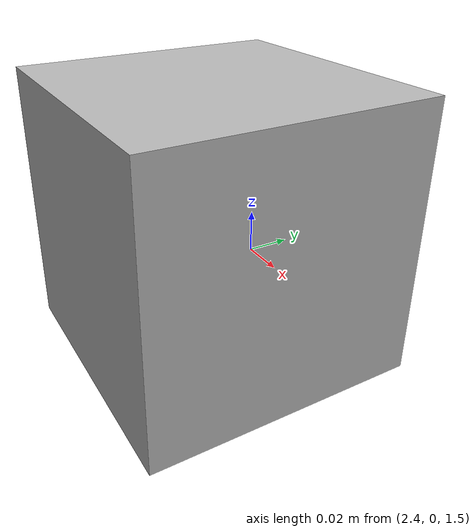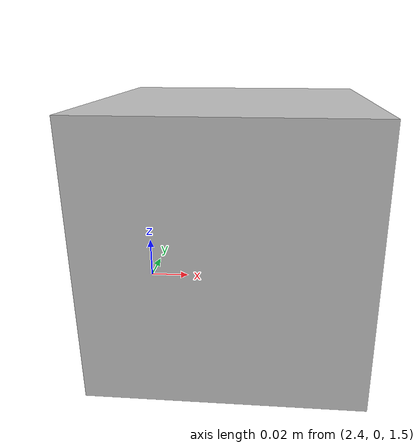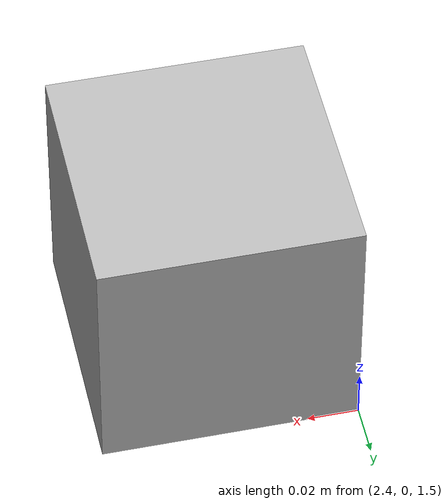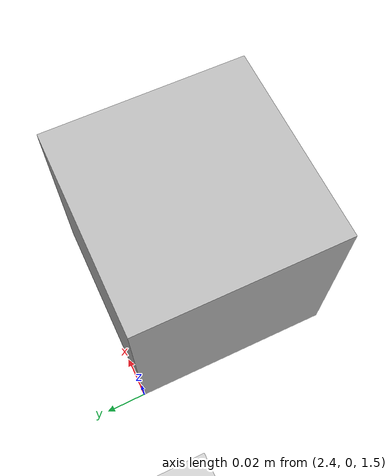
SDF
<?xml version="1.0" ?>
<sdf version="1.7">
  <world name="default">
    <plugin
      filename="gz-sim-sensors-system"
      name="gz::sim::systems::Sensors">
      <render_engine>ogre2</render_engine>
    </plugin>
    <plugin filename="RenderingServerPlugin"
            name="RenderingServerPlugin">
    </plugin>
    <plugin
      filename="gz-sim-scene-broadcaster-system"
      name="gz::sim::systems::SceneBroadcaster">
    </plugin>

    <gui fullscreen="0">

      <!-- 3D scene -->
      <plugin filename="MinimalScene" name="3D View">
        <gz-gui>
          <title>3D View</title>
          <property type="bool" key="showTitleBar">false</property>
          <property type="string" key="state">docked</property>
        </gz-gui>

        <engine>ogre2</engine>
        <scene>scene</scene>
        <ambient_light>0.4 0.4 0.4</ambient_light>
        <background_color>0.8 0.8 0.8</background_color>
        <camera_pose>-6 0 6 0 0.5 0</camera_pose>
      </plugin>

      <!-- Plugins that add functionality to the scene -->
      <plugin filename="EntityContextMenuPlugin" name="Entity context menu">
        <gz-gui>
          <property key="state" type="string">floating</property>
          <property key="width" type="double">5</property>
          <property key="height" type="double">5</property>
          <property key="showTitleBar" type="bool">false</property>
        </gz-gui>
      </plugin>
      <plugin filename="GzSceneManager" name="Scene Manager">
        <gz-gui>
          <property key="resizable" type="bool">false</property>
          <property key="width" type="double">5</property>
          <property key="height" type="double">5</property>
          <property key="state" type="string">floating</property>
          <property key="showTitleBar" type="bool">false</property>
        </gz-gui>
      </plugin>
      <plugin filename="InteractiveViewControl" name="Interactive view control">
        <gz-gui>
          <property key="resizable" type="bool">false</property>
          <property key="width" type="double">5</property>
          <property key="height" type="double">5</property>
          <property key="state" type="string">floating</property>
          <property key="showTitleBar" type="bool">false</property>
        </gz-gui>
      </plugin>
      <plugin filename="SelectEntities" name="Select Entities">
        <gz-gui>
          <anchors target="Select entities">
            <line own="right" target="right"/>
            <line own="top" target="top"/>
          </anchors>
          <property key="resizable" type="bool">false</property>
          <property key="width" type="double">5</property>
          <property key="height" type="double">5</property>
          <property key="state" type="string">floating</property>
          <property key="showTitleBar" type="bool">false</property>
        </gz-gui>
      </plugin>

      <!-- World control -->
      <plugin filename="WorldControl" name="World control">
        <gz-gui>
          <title>World control</title>
          <property type="bool" key="showTitleBar">false</property>
          <property type="bool" key="resizable">false</property>
          <property type="double" key="height">72</property>
          <property type="double" key="z">1</property>

          <property type="string" key="state">floating</property>
          <anchors target="3D View">
            <line own="left" target="left"/>
            <line own="bottom" target="bottom"/>
          </anchors>
        </gz-gui>

        <play_pause>true</play_pause>
        <step>true</step>
        <start_paused>true</start_paused>
        <use_event>true</use_event>

      </plugin>

      <!-- World statistics -->
      <plugin filename="WorldStats" name="World stats">
        <gz-gui>
          <title>World stats</title>
          <property type="bool" key="showTitleBar">false</property>
          <property type="bool" key="resizable">false</property>
          <property type="double" key="height">110</property>
          <property type="double" key="width">290</property>
          <property type="double" key="z">1</property>

          <property type="string" key="state">floating</property>
          <anchors target="3D View">
            <line own="right" target="right"/>
            <line own="bottom" target="bottom"/>
          </anchors>
        </gz-gui>

        <sim_time>true</sim_time>
        <real_time>true</real_time>
        <real_time_factor>true</real_time_factor>
        <iterations>true</iterations>
      </plugin>

      <plugin filename="ImageDisplay" name="Image Display">
        <gz-gui>
          <title>Camera</title>
          <property key="state" type="string">floating</property>
          <property type="double" key="width">350</property>
          <property type="double" key="height">315</property>
        </gz-gui>
        <topic>camera</topic>
        <topic_picker>false</topic_picker>
      </plugin>

      <plugin filename="RenderingGuiPlugin" name="Rendering GUI Plugin">
        <gz-gui>
          <title>Rendering GUI Plugin</title>
          <property key="state" type="string">floating</property>
          <property type="double" key="width">350</property>
          <property type="double" key="height">100</property>
          <property type="double" key="y">500</property>
        </gz-gui>
      </plugin>
    </gui>

    <light type="directional" name="sun">
      <cast_shadows>true</cast_shadows>
      <pose>0 0 10 0 0 0</pose>
      <diffuse>0.8 0.8 0.8 1</diffuse>
      <specular>0.2 0.2 0.2 1</specular>
      <attenuation>
        <range>1000</range>
        <constant>0.9</constant>
        <linear>0.01</linear>
        <quadratic>0.001</quadratic>
      </attenuation>
      <direction>-0.5 0.1 -0.9</direction>
    </light>

    <model name="ground_plane">
      <static>true</static>
      <link name="link">
        <collision name="collision">
          <geometry>
            <box>
              <size>20 20 0.1</size>
            </box>
          </geometry>
        </collision>
        <visual name="visual">
          <geometry>
            <box>
              <size>20 20 0.1</size>
            </box>
          </geometry>
          <material>
            <ambient>0.8 0.8 0.8 1</ambient>
            <diffuse>0.8 0.8 0.8 1</diffuse>
            <specular>0.8 0.8 0.8 1</specular>
          </material>
        </visual>
      </link>
    </model>

    <model name="camera_model">
      <pose>2.5 0 1.5 0 0.0 3.14</pose>
      <link name="link">
        <pose>0.05 0.05 0.05 0 0 0</pose>
        <inertial>
          <mass>0.1</mass>
          <inertia>
            <ixx>0.000166667</ixx>
            <iyy>0.000166667</iyy>
            <izz>0.000166667</izz>
          </inertia>
        </inertial>
        <collision name="collision">
          <geometry>
            <box>
              <size>0.1 0.1 0.1</size>
            </box>
          </geometry>
        </collision>
        <visual name="visual">
          <geometry>
            <box>
              <size>0.1 0.1 0.1</size>
            </box>
          </geometry>
        </visual>
        <sensor name="camera" type="camera">
          <camera>
            <horizontal_fov>1.047</horizontal_fov>
            <image>
              <width>320</width>
              <height>240</height>
            </image>
            <clip>
              <near>0.1</near>
              <far>100</far>
            </clip>
          </camera>
          <always_on>1</always_on>
          <update_rate>30</update_rate>
          <visualize>true</visualize>
          <topic>camera</topic>
        </sensor>
      </link>
      <static>true</static>
    </model>
  </world>
</sdf>
